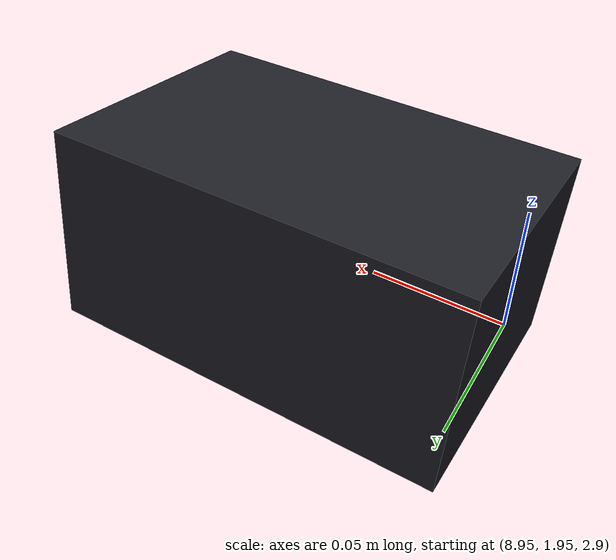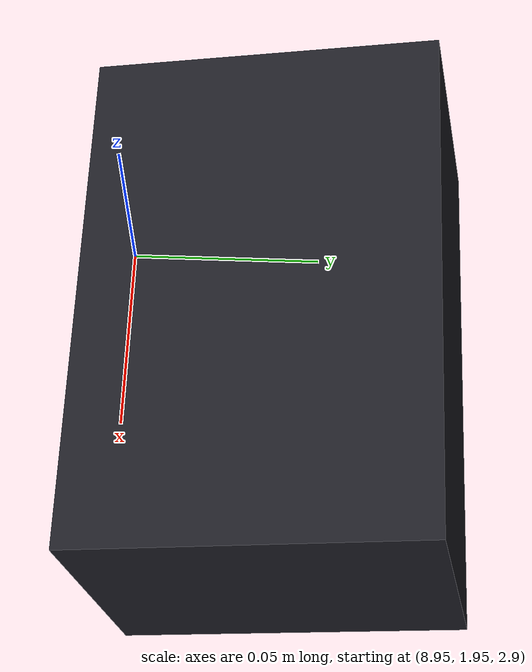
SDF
<sdf version="1.9">
 <world name="mocap_arena">
  <model name="camera_2">
   <static>true</static>
   <pose>9.0 2.0 2.9 0.17453292519943295 -3.1898652743636566e-17 -2.7907704968183198e-18</pose>
   <link name="camera_link">
    <visual name="housing_visual">
     <pose>0 0 0.05 0 0 0</pose>
     <geometry><box><size>0.12 0.08 0.06</size></box></geometry>
     <material>
      <ambient>0.12 0.12 0.15 1</ambient>
      <diffuse>0.12 0.12 0.15 1</diffuse>
      <pbr><metal><metalness>0.0</metalness><roughness>0.75</roughness></metal></pbr>
     </material>
    </visual>
    <sensor name="camera_2" type="wideanglecamera">
     <pose>0 0 0 0 1.5707963267948966 1.5707963267948966</pose>
     <always_on>true</always_on>
     <update_rate>80</update_rate>
     <topic>/cameras/camera_2/image</topic>
     <visualize>true</visualize>
     <camera>
      <horizontal_fov>2.23271380848488</horizontal_fov>
      <camera_info_topic>/cameras/camera_2/camera_info</camera_info_topic>
      <image><width>1640</width><height>1232</height><format>R8G8B8</format></image>
      <clip><near>0.05</near><far>20</far></clip>
      <lens>
       <type>equidistant</type>
       <scale_to_hfov>true</scale_to_hfov>
       <cutoff_angle>1.3962634015954636</cutoff_angle>
       <env_texture_size>2048</env_texture_size>
       <intrinsics><fx>734.53211682016</fx><fy>734.53211682016</fy><cx>820.0</cx><cy>616.0</cy><s>0</s></intrinsics>
      </lens>
     </camera>
    </sensor>
   </link>
  </model>
 </world>
</sdf>
